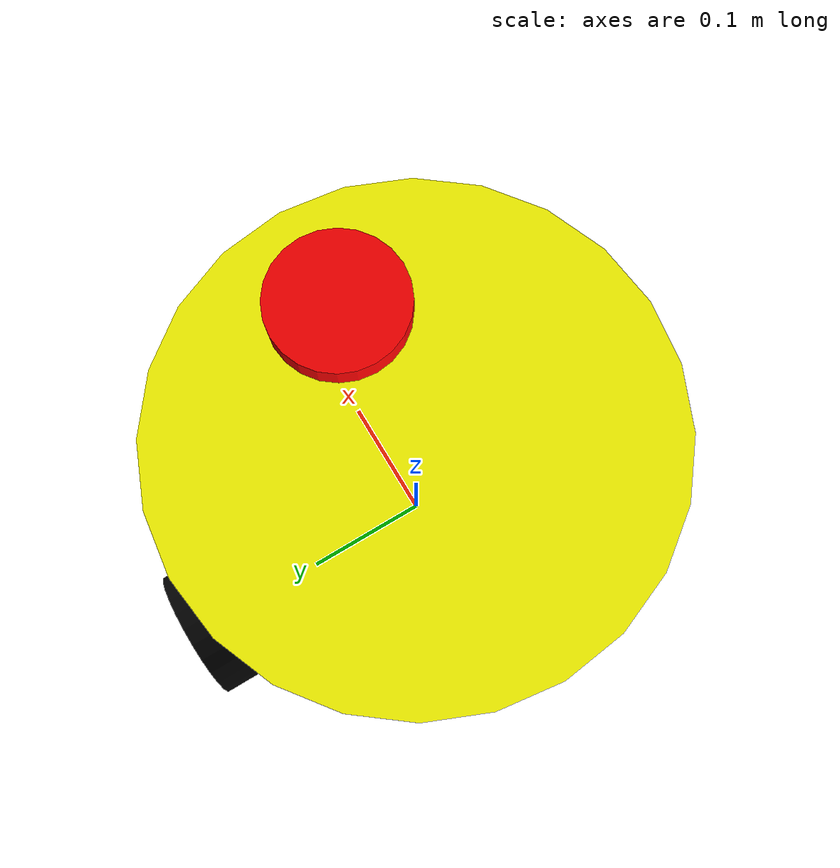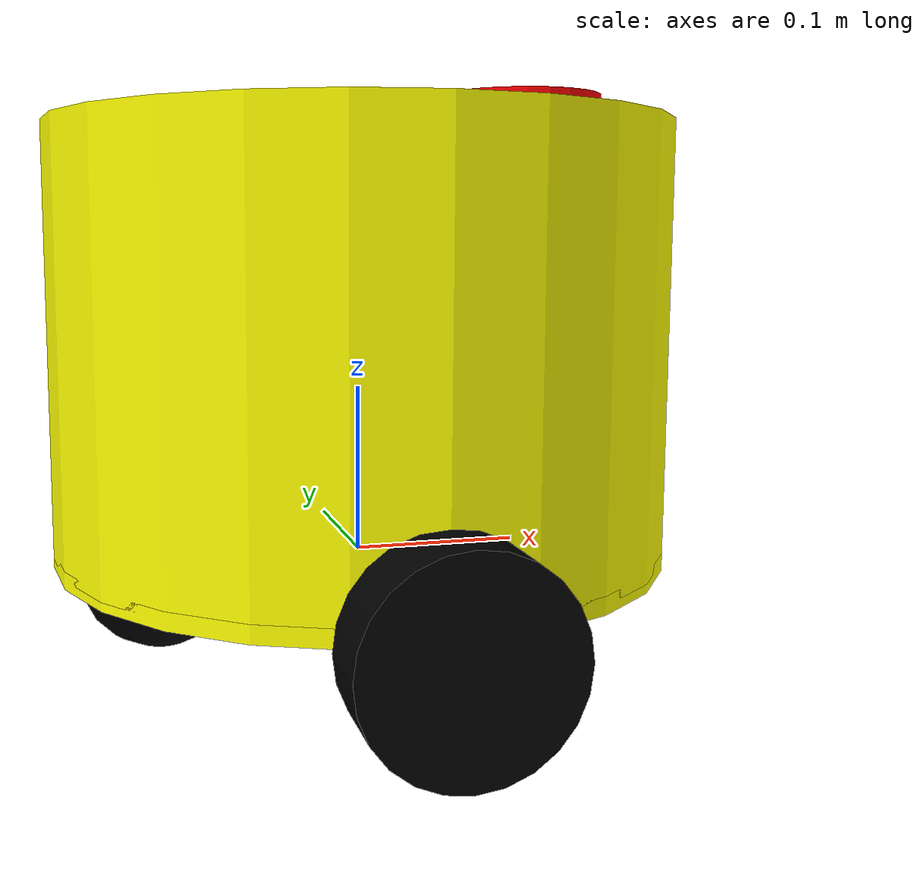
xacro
<?xml version="1.0"?>
<robot xmlns:xacro="http://www.ros.org/wiki/xacro"  name="robot">

    <xacro:arg name="use_ros2_control" default="true"/>
    <xacro:arg name="sim_mode" default="false"/>

    <xacro:include filename="robot_core.xacro" />

    <xacro:if value="$(arg use_ros2_control)">
        <xacro:include filename="ros2_control.xacro" />
    </xacro:if>
    <xacro:unless value="$(arg use_ros2_control)">
        <xacro:include filename="gazebo_control.xacro" />
    </xacro:unless>
    <xacro:include filename="lidar.xacro" />
     <xacro:include filename="camera.xacro" />

</robot>

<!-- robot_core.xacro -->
<robot name="robot_core" xmlns:xacro="http://www.ros.org/wiki/xacro">

  <!-- Include inertial macros -->
  <!-- Ensure that inertial_macros.xacro is present and correctly defined -->
  <xacro:include filename="inertial_macros.xacro"/>

  <!-- Define colors -->
  <material name="yellow">
    <color rgba="1 1 0 1"/>
  </material>
  <material name="black">
    <color rgba="0 0 0 1"/>
  </material>

  <!-- Define the base link -->
  <link name="base_link">
    <visual>
      <geometry>
        <cylinder radius="0.1815" length="0.01"/>
      </geometry>
      <material name="yellow"/>
      <origin xyz="0 0 0.005" rpy="0 0 0"/>
    </visual>
    <collision>
      <geometry>
        <cylinder radius="0.1815" length="0.01"/>
      </geometry>
      <origin xyz="0 0 0.005" rpy="0 0 0"/>
    </collision>
    <inertial>
      <mass value="1"/>
      <inertia ixx="0.001" ixy="0" ixz="0" iyy="0.001" iyz="0" izz="0.001"/>
    </inertial>
  </link>
  <gazebo reference="base_link">
    <material>Gazebo/Yellow</material>
  </gazebo>

  <!-- Define the chassis link -->
  <link name="chassis_link">
    <visual>
      <geometry>
        <cylinder radius="0.1815" length="0.25"/>
      </geometry>
      <material name="yellow"/>
      <origin xyz="0 0 0.125" rpy="0 0 0"/>
    </visual>
    <collision>
      <geometry>
        <cylinder radius="0.1815" length="0.25"/>
      </geometry>
      <origin xyz="0 0 0.125" rpy="0 0 0"/>
    </collision>
    <inertial>
      <mass value="5"/>
      <inertia ixx="0.015" ixy="0" ixz="0" iyy="0.015" iyz="0" izz="0.015"/>
    </inertial>
  </link>
  <gazebo reference="chassis_link">
    <material>Gazebo/Yellow</material>
  </gazebo>

  <!-- Joint between base_link and chassis_link -->
  <joint name="base_to_chassis" type="fixed">
    <parent link="base_link"/>
    <child link="chassis_link"/>
    <origin xyz="0 0 0.005" rpy="0 0 0"/>
  </joint>

  <!-- Left wheel -->
  <joint name="left_wheel_joint" type="continuous">
    <parent link="base_link"/>
    <child link="left_wheel"/>
    <origin xyz="0 0.198 0" rpy="-${pi/2}  0 0"/>
    <axis xyz="0 0 1"/>
  </joint>

  <link name="left_wheel">
    <visual>
      <geometry>
        <cylinder radius="0.056" length="0.04"/>
      </geometry>
      <material name="black"/>
    </visual>
    <collision>
      <geometry>
        <cylinder radius="0.056" length="0.04"/>
      </geometry>
    </collision>
    <inertial>
      <mass value="0.1"/>
      <inertia ixx="0.0001" ixy="0" ixz="0" iyy="0.0001" iyz="0" izz="0.0001"/>
    </inertial>
  </link>
  <gazebo reference="left_wheel">
    <material>Gazebo/Black</material>
    <mu1>0.2</mu1>
    <mu2>0.2</mu2>
    <damping>0.01</damping>
  </gazebo>

  <!-- Right wheel -->
  <joint name="right_wheel_joint" type="continuous">
    <parent link="base_link"/>
    <child link="right_wheel"/>
    <origin xyz="0 -0.198 0" rpy="${pi/2} 0 0"/>
    <axis xyz="0 0 -1"/>
  </joint>

  <link name="right_wheel">
    <visual>
      <geometry>
        <cylinder radius="0.056" length="0.04"/>
      </geometry>
      <material name="black"/>
    </visual>
    <collision>
      <geometry>
        <cylinder radius="0.056" length="0.04"/>
      </geometry>
    </collision>
    <inertial>
      <mass value="0.1"/>
      <inertia ixx="0.0001" ixy="0" ixz="0" iyy="0.0001" iyz="0" izz="0.0001"/>
    </inertial>
  </link>
  <gazebo reference="right_wheel">
    <material>Gazebo/Black</material>
    <mu1>0.2</mu1>
    <mu2>0.2</mu2>
    <damping>0.01</damping>
  </gazebo>

  <!-- Caster wheel front -->
  <joint name="caster_wheel_joint_front" type="fixed">
    <parent link="base_link"/>
    <child link="caster_wheel_front"/>
    <origin xyz="0.12 0 0"/>
  </joint>

  <link name="caster_wheel_front">
    <visual>
      <geometry>
        <sphere radius="0.05"/>
      </geometry>
      <material name="black"/>
    </visual>
    <collision>
      <geometry>
        <sphere radius="0.05"/>
      </geometry>
    </collision>
    <inertial>
      <mass value="0.1"/>
      <inertia ixx="0.0001" ixy="0" ixz="0" iyy="0.0001" iyz="0" izz="0.0001"/>
    </inertial>
  </link>
  <gazebo reference="caster_wheel_front">
    <material>Gazebo/Black</material>
    <mu1>0.01</mu1>
    <mu2>0.01</mu2>
    <damping>0.01</damping>
  </gazebo>

  <!-- Caster wheel back -->
  <joint name="caster_wheel_joint_back" type="fixed">
    <parent link="base_link"/>
    <child link="caster_wheel_back"/>
    <origin xyz="-0.12 0 0"/>
  </joint>

  <link name="caster_wheel_back">
    <visual>
      <geometry>
        <sphere radius="0.05"/>
      </geometry>
      <material name="black"/>
    </visual>
    <collision>
      <geometry>
        <sphere radius="0.05"/>
      </geometry>
    </collision>
    <inertial>
      <mass value="0.1"/>
      <inertia ixx="0.0001" ixy="0" ixz="0" iyy="0.0001" iyz="0" izz="0.0001"/>
    </inertial>
  </link>
  <gazebo reference="caster_wheel_back">
    <material>Gazebo/Black</material>
    <mu1>0.01</mu1>
    <mu2>0.01</mu2>
    <damping>0.01</damping>
  </gazebo>

</robot>

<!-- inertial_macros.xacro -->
<robot xmlns:xacro="http://www.ros.org/wiki/xacro" >

    <!-- Specify some standard inertial calculations https://en.wikipedia.org/wiki/List_of_moments_of_inertia -->
    <!-- These make use of xacro's mathematical functionality -->

    <xacro:macro name="inertial_sphere" params="mass radius *origin">
        <inertial>
            <xacro:insert_block name="origin"/>
            <mass value="${mass}" />
            <inertia ixx="${(2/5) * mass * (radius*radius)}" ixy="0.0" ixz="0.0"
                    iyy="${(2/5) * mass * (radius*radius)}" iyz="0.0"
                    izz="$
                    {(2/5) * mass * (radius*radius)}" />
        </inertial>
    </xacro:macro>

    <xacro:macro name="inertial_box" params="mass x y z *origin">
        <inertial>
            <xacro:insert_block name="origin"/>
            <mass value="${mass}" />
            <inertia ixx="${(1/12) * mass * (y*y+z*z)}" ixy="0.0" ixz="0.0"
                    iyy="${(1/12) * mass * (x*x+z*z)}" iyz="0.0"
                    izz="${(1/12) * mass * (x*x+y*y)}" />
        </inertial>
    </xacro:macro>

    <xacro:macro name="inertial_cylinder" params="mass length radius *origin">
        <inertial>
            <xacro:insert_block name="origin"/>
            <mass value="${mass}" />
            <inertia ixx="${(1/12) * mass * (3*radius*radius + length*length)}" ixy="0.0" ixz="0.0"
                    iyy="${(1/12) * mass * (3*radius*radius + length*length)}" iyz="0.0"
                    izz="${(1/2) * mass * (radius*radius)}" />
        </inertial>
    </xacro:macro>

</robot>

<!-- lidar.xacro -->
<robot xmlns:xacro="http://www.ros.org/wiki/xacro">

    <!-- Include inertial macros -->
    <xacro:include filename="inertial_macros.xacro"/>

    <!-- Define colors -->
    <material name="red">
        <color rgba="1 0 0 1"/>
    </material>

    <!-- Define the LiDAR link -->
    <link name="laser_frame">
        <visual>
            <geometry>
                <cylinder radius="0.05" length="0.04"/>
            </geometry>
            <material name="red"/>
            <origin xyz="0 0 0" rpy="0 0 0"/> <!-- Adjust origin if needed -->
        </visual>
        <collision>
            <geometry>
                <cylinder radius="0.05" length="0.04"/>
            </geometry>
            <origin xyz="0 0 0" rpy="0 0 0"/> <!-- Adjust origin if needed -->
        </collision>
        <xacro:inertial_cylinder mass="0.1" length="0.04" radius="0.05">
            <origin xyz="0 0 0" rpy="0 0 0"/> <!-- Adjust origin if needed -->
        </xacro:inertial_cylinder>
    </link>

    <!-- Gazebo reference for LiDAR -->
    <gazebo reference="laser_frame">
        <material>Gazebo/Red</material>

        <!-- LiDAR sensor specification -->
        <sensor name="laser" type="ray">
            <pose>0 0 0 0 0 0</pose> <!-- Adjust pose if needed -->
            <visualize>false</visualize>
            <update_rate>10</update_rate>
            <ray>
                <scan>
                    <horizontal>
                        <samples>360</samples> <!-- Adjust number of samples -->
                        <min_angle>-3.14</min_angle>
                        <max_angle>3.14</max_angle>
                    </horizontal>
                </scan>
                <range>
                    <min>0.3</min> <!-- Adjust min and max range -->
                    <max>12</max>
                </range>
            </ray>
            <plugin name="laser_controller" filename="libgazebo_ros_ray_sensor.so">
                <ros>
                    <argument>~/out:=scan</argument>
                </ros>
                <output_type>sensor_msgs/LaserScan</output_type>
                <frame_name>laser_frame</frame_name> <!-- Frame name should match the link name -->
            </plugin>
        </sensor>
    </gazebo>

    <!-- Joint connecting LiDAR to the chassis -->
    <joint name="laser_joint" type="fixed">
        <parent link="chassis_link"/> <!-- Adjust parent link name as per your setup -->
        <child link="laser_frame"/>
        <origin xyz="0.1 0 0.25" rpy="0 0 0"/> <!-- Adjust origin and orientation if needed -->
    </joint>

</robot>

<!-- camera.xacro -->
<robot xmlns:xacro="http://www.ros.org/wiki/xacro">

    <!-- Include inertial macros -->
    <xacro:include filename="inertial_macros.xacro"/>

    <!-- Define colors -->

  <!-- Joint connecting LiDAR to the chassis -->
    <joint name="camera_joint" type="fixed">
        <parent link="chassis_link"/> <!-- Adjust parent link name as per your setup -->
        <child link="camera_link"/>
        <origin xyz="0.18 0 0.215" rpy="0 0 0"/> <!-- Adjust origin and orientation if needed -->
    </joint>

    <!-- Define the LiDAR link -->
    <link name="camera_link">
        <visual>
            <geometry>
                <box size="0.010 0.03 0.03"/>
            </geometry>
            <material name="red"/>
            <origin xyz="0 0 0" rpy="0 0 0"/> <!-- Adjust origin if needed -->
        </visual>

    </link>

     <joint name="camera_optical_joint" type="fixed">
        <parent link="chassis_link"/> <!-- Adjust parent link name as per your setup -->
        <child link="camera_optical_link"/>
        <origin xyz="0 0 0" rpy="${-pi/2} 0 ${-pi/2}"/> <!-- Adjust origin and orientation if needed -->
    </joint>

     <link name="camera_optical_link">
    </link>

    <!-- Gazebo reference for LiDAR -->
    <gazebo reference="camera_link">
        <material>Gazebo/Red</material>

        <sensor name="camera" type="camera">
            <pose> 0 0 0 0 0 0 </pose>
            <visualize>true</visualize>
            <update_rate>10</update_rate>
            <camera>
                <horizontal_fov>1.089</horizontal_fov>
                <image>
                    <format>B8G8R8</format>
                    <width>640</width>
                    <height>480</height>
                </image>
                <clip>
                    <near>0.05</near>
                    <far>8.0</far>
                </clip>
            </camera>
            <plugin name="camera_controller" filename="libgazebo_ros_camera.so">
                <frame_name>camera_optical_link</frame_name>
                <min_depth>0.1</min_depth>
                <max_depth>100</max_depth>
            </plugin>
        </sensor>
    </gazebo>

</robot>
